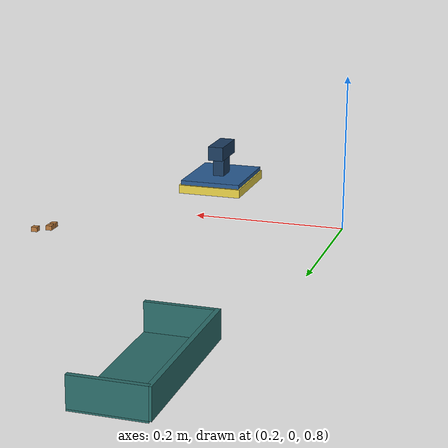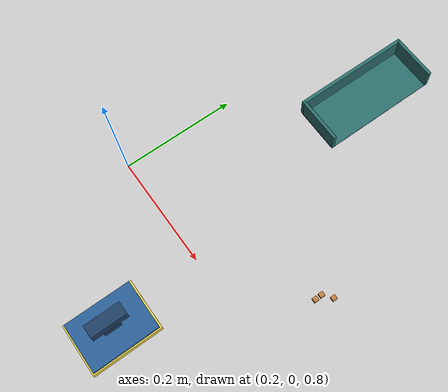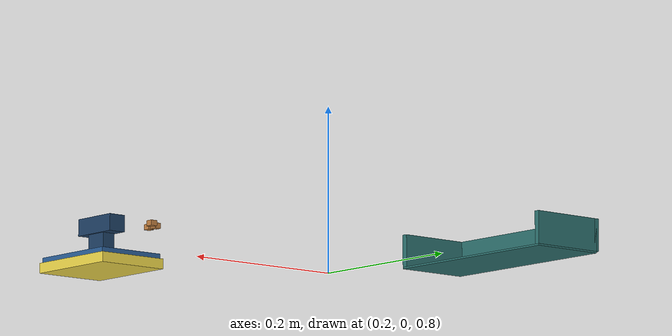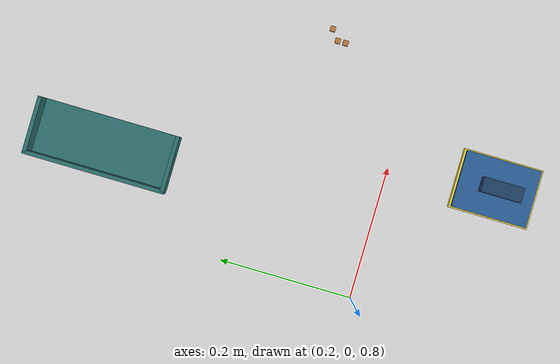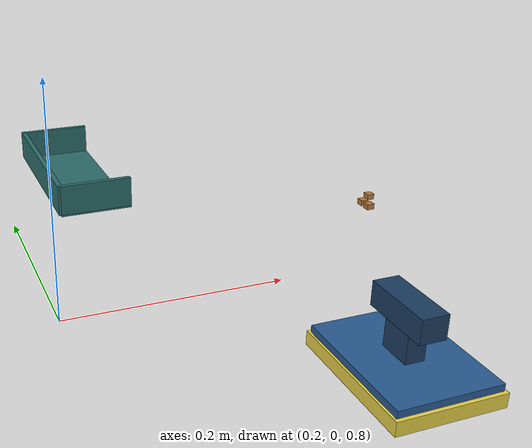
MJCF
<?xml version="1.0" encoding="utf-8"?>
<mujoco>
  <asset>
    <material name="cleanup_foam" rgba="0.92 0.83 0.28 1" />
    <material name="cleanup_backing" rgba="0.16 0.36 0.58 1" />
    <material name="cleanup_handle" rgba="0.11 0.24 0.38 1" />
    <material name="cleanup_crumb_material" rgba="0.73 0.48 0.24 1" />
    <material name="cleanup_tray_material" rgba="0.17 0.43 0.42 1" />
  </asset>
  <worldbody>
    <!-- The table top is z=0.800. The soft contact response approximates a sponge pad,
         but does not model its internal deformation. The rigid handle is grasped along X. -->
    <body name="cleanup_sponge" pos="0.415 -0.160 0.806">
      <freejoint name="fj_sponge" />
      <inertial pos="0 0 0.014" mass="0.090" diaginertia="0.00007 0.00010 0.00012" />
      <geom name="cleanup_sponge_pad" type="box" size="0.045 0.060 0.006" material="cleanup_foam" friction="1.3 0.03 0.001" solref="0.025 1" solimp="0.85 0.97 0.001" contype="1" conaffinity="1023" />
      <geom name="cleanup_sponge_backing" type="box" pos="0 0 0.009" size="0.043 0.057 0.003" material="cleanup_backing" contype="1" conaffinity="1023" />
      <geom name="cleanup_sponge_stem" type="box" pos="0 0 0.032" size="0.008 0.014 0.020" material="cleanup_handle" contype="1" conaffinity="1023" />
      <geom name="cleanup_sponge_handle" type="box" pos="0 0 0.048" size="0.011 0.030 0.010" material="cleanup_handle" friction="1.8 0.03 0.001" contype="1" conaffinity="1023" />
      <site name="sponge_grasp" pos="0 0.010 0.048" size="0.003" rgba="0 0 0 0" />
      <site name="sponge_contact" pos="0 0 -0.006" size="0.003" rgba="0 0 0 0" />
    </body>

    <!-- Three separate free bodies let the collector measure cleared fractions. -->
    <body name="cleanup_crumb_0" pos="0.575000 0.136 0.803">
      <freejoint name="fj_crumb_0" />
      <inertial pos="0 0 0" mass="0.003" diaginertia="0.00000012 0.00000016 0.00000020" />
      <geom name="cleanup_crumb_0_geom" type="box" size="0.004 0.004 0.003" material="cleanup_crumb_material" friction="0.65 0.005 0.0001" contype="1" conaffinity="1023" />
    </body>
    <body name="cleanup_crumb_1" pos="0.560000 0.112 0.803">
      <freejoint name="fj_crumb_1" />
      <inertial pos="0 0 0" mass="0.004" diaginertia="0.00000016 0.00000022 0.00000025" />
      <geom name="cleanup_crumb_1_geom" type="box" size="0.004 0.004 0.003" material="cleanup_crumb_material" friction="0.65 0.005 0.0001" contype="1" conaffinity="1023" />
    </body>
    <body name="cleanup_crumb_2" pos="0.560000 0.124 0.803">
      <freejoint name="fj_crumb_2" />
      <inertial pos="0 0 0" mass="0.002" diaginertia="0.00000009 0.00000011 0.00000015" />
      <geom name="cleanup_crumb_2_geom" type="box" size="0.004 0.004 0.003" material="cleanup_crumb_material" friction="0.65 0.005 0.0001" contype="1" conaffinity="1023" />
    </body>

    <!-- Fully outside the near table edge (X=0.360976); open toward +X. -->
    <body name="cleanup_tray" pos="0.315 0.420 0.753">
      <geom name="cleanup_tray_bottom" type="box" pos="0 0 0.001" size="0.043 0.110 0.001" material="cleanup_tray_material" friction="0.7 0.01 0.001" contype="1" conaffinity="1023" />
      <geom name="cleanup_tray_side_left" type="box" pos="0 -0.107 0.020" size="0.043 0.003 0.018" material="cleanup_tray_material" contype="1" conaffinity="1023" />
      <geom name="cleanup_tray_side_right" type="box" pos="0 0.107 0.020" size="0.043 0.003 0.018" material="cleanup_tray_material" contype="1" conaffinity="1023" />
      <geom name="cleanup_tray_back" type="box" pos="-0.043 0 0.020" size="0.003 0.110 0.018" material="cleanup_tray_material" contype="1" conaffinity="1023" />
    </body>
  </worldbody>
</mujoco>
